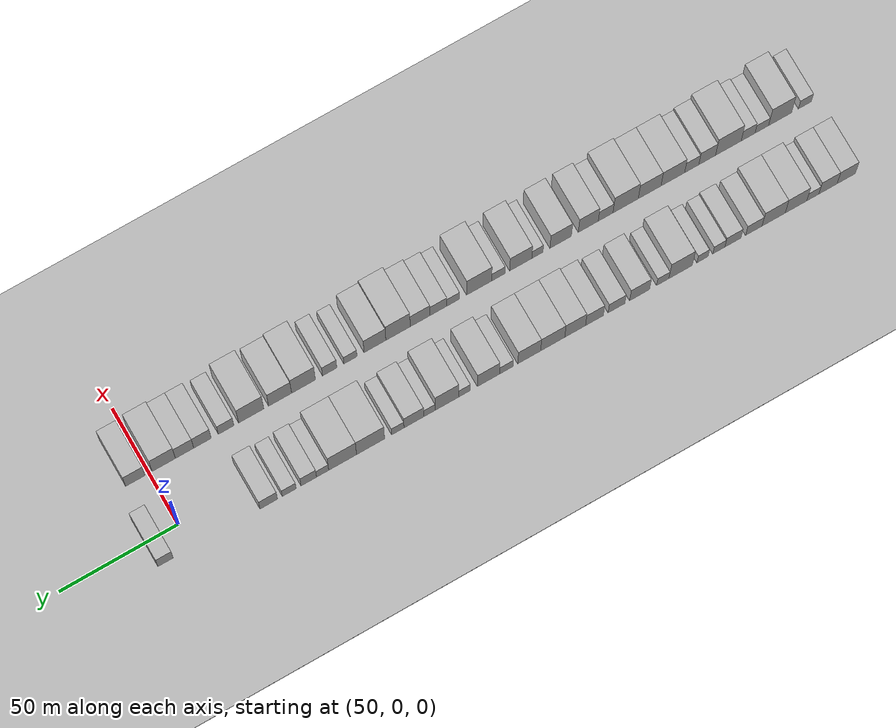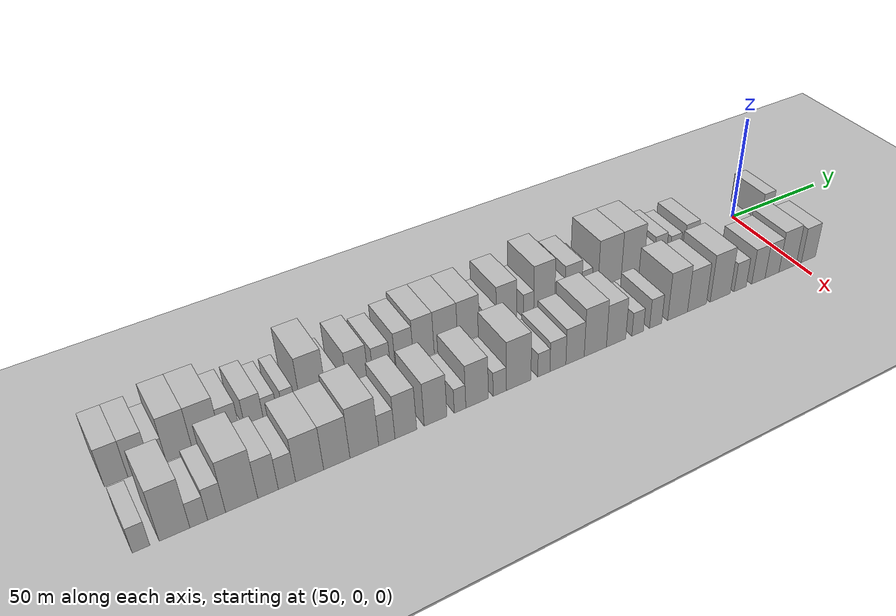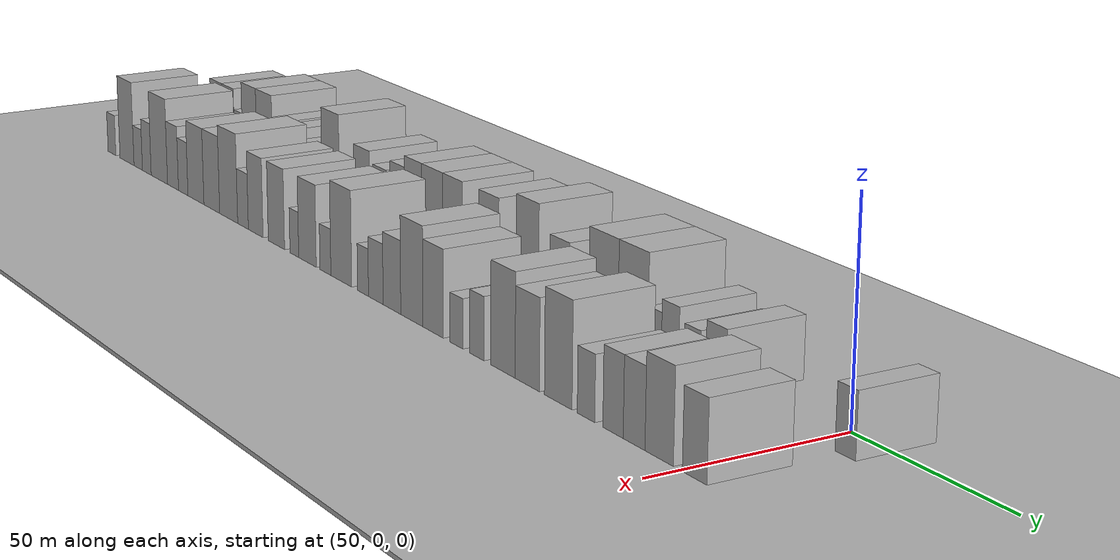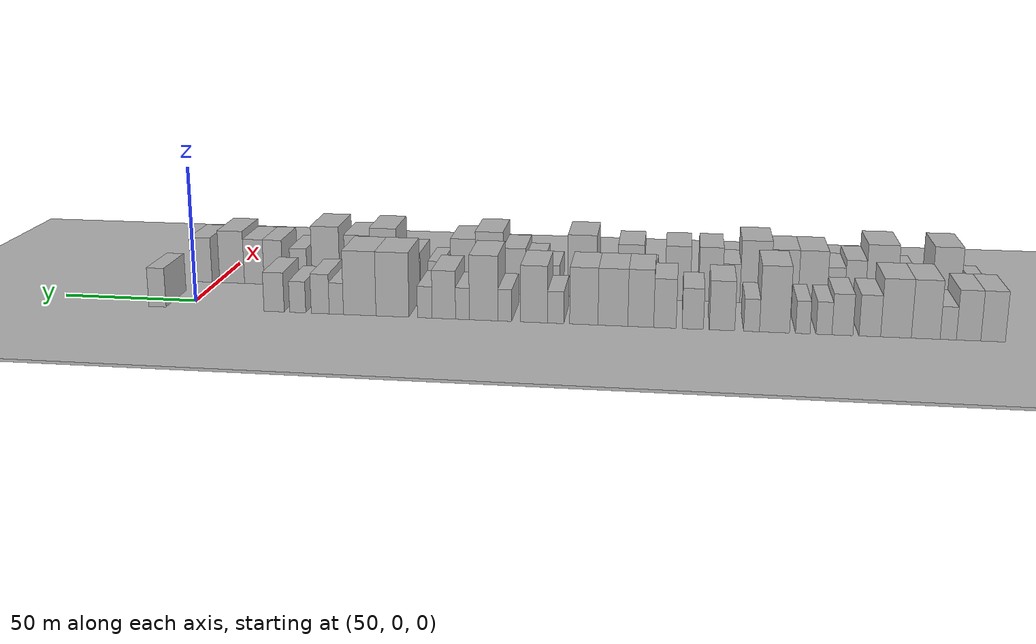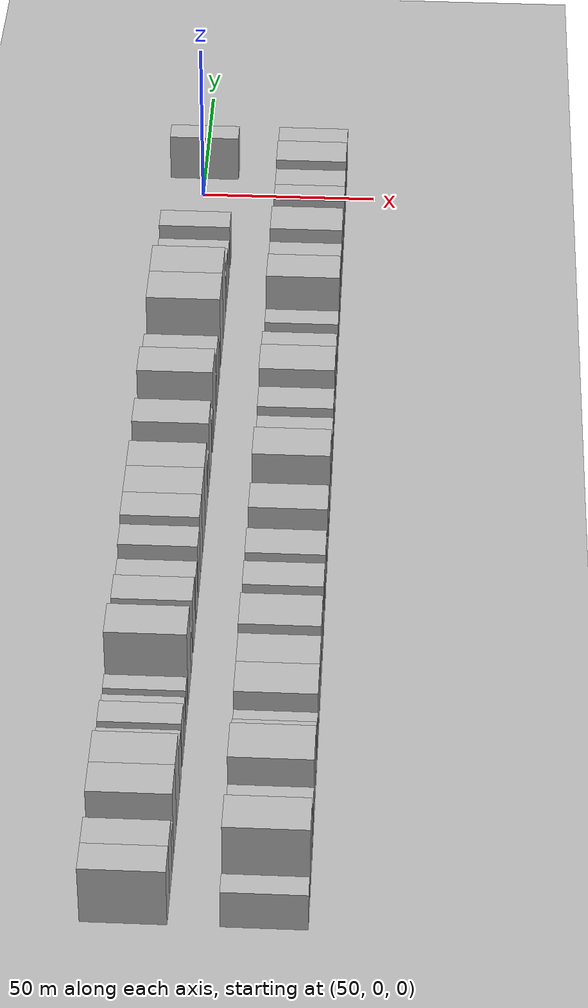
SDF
<sdf version="1.6">
 <world name="default">
  <include><name>ground_plane_1</name><uri>model://HANNAS_ground_plane</uri></include>
  <include>
   <name>ground_plane_2</name>
   <uri>model://HANNAS_ground_plane</uri>
   <pose>100 0 0  0 0 0</pose>
  </include>
  <model name="building_1">
   <static>1</static>
   <pose>50.0000 -280.0418 0 0.000000 0.000000 0.000000</pose>
   <link name="link">
    <pose>0 0 9.00 0 0 0</pose>
    <collision name="collision"><geometry><box><size>20.0000 7.9164 18.0000</size></box></geometry></collision>
    <visual name="visual">
     <cast_shadows>0</cast_shadows>
     <geometry><box><size>20.0000 7.9164 18.0000</size></box></geometry>
     <material>
      <script>
       <uri>model://HANNAS_wall/materials/scripts</uri>
       <uri>model://HANNAS_wall/materials/textures</uri>
       <name>vrc/HANNAS_wall</name>
      </script>
     </material>
    </visual>
   </link>
  </model>
  <model name="building_2">
   <static>1</static>
   <pose>50.0000 -272.1381 0 0.000000 0.000000 0.000000</pose>
   <link name="link">
    <pose>0 0 9.00 0 0 0</pose>
    <collision name="collision"><geometry><box><size>20.0000 7.8909 18.0000</size></box></geometry></collision>
    <visual name="visual">
     <cast_shadows>0</cast_shadows>
     <geometry><box><size>20.0000 7.8909 18.0000</size></box></geometry>
     <material>
      <script>
       <uri>model://HANNAS_wall/materials/scripts</uri>
       <uri>model://HANNAS_wall/materials/textures</uri>
       <name>vrc/HANNAS_wall</name>
      </script>
     </material>
    </visual>
   </link>
  </model>
  <model name="building_3">
   <static>1</static>
   <pose>50.0000 -265.5520 0 0.000000 0.000000 0.000000</pose>
   <link name="link">
    <pose>0 0 6.00 0 0 0</pose>
    <collision name="collision"><geometry><box><size>20.0000 5.2812 12.0000</size></box></geometry></collision>
    <visual name="visual">
     <cast_shadows>0</cast_shadows>
     <geometry><box><size>20.0000 5.2812 12.0000</size></box></geometry>
     <material>
      <script>
       <uri>model://HANNAS_wall/materials/scripts</uri>
       <uri>model://HANNAS_wall/materials/textures</uri>
       <name>vrc/HANNAS_wall</name>
      </script>
     </material>
    </visual>
   </link>
  </model>
  <model name="building_4">
   <static>1</static>
   <pose>50.0000 -258.2314 0 0.000000 0.000000 0.000000</pose>
   <link name="link">
    <pose>0 0 10.50 0 0 0</pose>
    <collision name="collision"><geometry><box><size>20.0000 9.3601 21.0000</size></box></geometry></collision>
    <visual name="visual">
     <cast_shadows>0</cast_shadows>
     <geometry><box><size>20.0000 9.3601 21.0000</size></box></geometry>
     <material>
      <script>
       <uri>model://HANNAS_wall/materials/scripts</uri>
       <uri>model://HANNAS_wall/materials/textures</uri>
       <name>vrc/HANNAS_wall</name>
      </script>
     </material>
    </visual>
   </link>
  </model>
  <model name="building_5">
   <static>1</static>
   <pose>50.0000 -248.5249 0 0.000000 0.000000 0.000000</pose>
   <link name="link">
    <pose>0 0 10.50 0 0 0</pose>
    <collision name="collision"><geometry><box><size>20.0000 10.0527 21.0000</size></box></geometry></collision>
    <visual name="visual">
     <cast_shadows>0</cast_shadows>
     <geometry><box><size>20.0000 10.0527 21.0000</size></box></geometry>
     <material>
      <script>
       <uri>model://HANNAS_wall/materials/scripts</uri>
       <uri>model://HANNAS_wall/materials/textures</uri>
       <name>vrc/HANNAS_wall</name>
      </script>
     </material>
    </visual>
   </link>
  </model>
  <model name="building_6">
   <static>1</static>
   <pose>50.0000 -239.9425 0 0.000000 0.000000 0.000000</pose>
   <link name="link">
    <pose>0 0 7.50 0 0 0</pose>
    <collision name="collision"><geometry><box><size>20.0000 7.1122 15.0000</size></box></geometry></collision>
    <visual name="visual">
     <cast_shadows>0</cast_shadows>
     <geometry><box><size>20.0000 7.1122 15.0000</size></box></geometry>
     <material>
      <script>
       <uri>model://HANNAS_wall/materials/scripts</uri>
       <uri>model://HANNAS_wall/materials/textures</uri>
       <name>vrc/HANNAS_wall</name>
      </script>
     </material>
    </visual>
   </link>
  </model>
  <model name="building_7">
   <static>1</static>
   <pose>50.0000 -230.9137 0 0.000000 0.000000 0.000000</pose>
   <link name="link">
    <pose>0 0 7.50 0 0 0</pose>
    <collision name="collision"><geometry><box><size>20.0000 6.9454 15.0000</size></box></geometry></collision>
    <visual name="visual">
     <cast_shadows>0</cast_shadows>
     <geometry><box><size>20.0000 6.9454 15.0000</size></box></geometry>
     <material>
      <script>
       <uri>model://HANNAS_wall/materials/scripts</uri>
       <uri>model://HANNAS_wall/materials/textures</uri>
       <name>vrc/HANNAS_wall</name>
      </script>
     </material>
    </visual>
   </link>
  </model>
  <model name="building_8">
   <static>1</static>
   <pose>50.0000 -224.8101 0 0.000000 0.000000 0.000000</pose>
   <link name="link">
    <pose>0 0 6.00 0 0 0</pose>
    <collision name="collision"><geometry><box><size>20.0000 5.2617 12.0000</size></box></geometry></collision>
    <visual name="visual">
     <cast_shadows>0</cast_shadows>
     <geometry><box><size>20.0000 5.2617 12.0000</size></box></geometry>
     <material>
      <script>
       <uri>model://HANNAS_wall/materials/scripts</uri>
       <uri>model://HANNAS_wall/materials/textures</uri>
       <name>vrc/HANNAS_wall</name>
      </script>
     </material>
    </visual>
   </link>
  </model>
  <model name="building_9">
   <static>1</static>
   <pose>50.0000 -217.7683 0 0.000000 0.000000 0.000000</pose>
   <link name="link">
    <pose>0 0 6.00 0 0 0</pose>
    <collision name="collision"><geometry><box><size>20.0000 4.8219 12.0000</size></box></geometry></collision>
    <visual name="visual">
     <cast_shadows>0</cast_shadows>
     <geometry><box><size>20.0000 4.8219 12.0000</size></box></geometry>
     <material>
      <script>
       <uri>model://HANNAS_wall/materials/scripts</uri>
       <uri>model://HANNAS_wall/materials/textures</uri>
       <name>vrc/HANNAS_wall</name>
      </script>
     </material>
    </visual>
   </link>
  </model>
  <model name="building_10">
   <static>1</static>
   <pose>50.0000 -208.3083 0 0.000000 0.000000 0.000000</pose>
   <link name="link">
    <pose>0 0 12.00 0 0 0</pose>
    <collision name="collision"><geometry><box><size>20.0000 10.0980 24.0000</size></box></geometry></collision>
    <visual name="visual">
     <cast_shadows>0</cast_shadows>
     <geometry><box><size>20.0000 10.0980 24.0000</size></box></geometry>
     <material>
      <script>
       <uri>model://HANNAS_wall/materials/scripts</uri>
       <uri>model://HANNAS_wall/materials/textures</uri>
       <name>vrc/HANNAS_wall</name>
      </script>
     </material>
    </visual>
   </link>
  </model>
  <model name="building_11">
   <static>1</static>
   <pose>50.0000 -200.6108 0 0.000000 0.000000 0.000000</pose>
   <link name="link">
    <pose>0 0 6.00 0 0 0</pose>
    <collision name="collision"><geometry><box><size>20.0000 5.2971 12.0000</size></box></geometry></collision>
    <visual name="visual">
     <cast_shadows>0</cast_shadows>
     <geometry><box><size>20.0000 5.2971 12.0000</size></box></geometry>
     <material>
      <script>
       <uri>model://HANNAS_wall/materials/scripts</uri>
       <uri>model://HANNAS_wall/materials/textures</uri>
       <name>vrc/HANNAS_wall</name>
      </script>
     </material>
    </visual>
   </link>
  </model>
  <model name="building_12">
   <static>1</static>
   <pose>50.0000 -190.6578 0 0.000000 0.000000 0.000000</pose>
   <link name="link">
    <pose>0 0 9.00 0 0 0</pose>
    <collision name="collision"><geometry><box><size>20.0000 8.6088 18.0000</size></box></geometry></collision>
    <visual name="visual">
     <cast_shadows>0</cast_shadows>
     <geometry><box><size>20.0000 8.6088 18.0000</size></box></geometry>
     <material>
      <script>
       <uri>model://HANNAS_wall/materials/scripts</uri>
       <uri>model://HANNAS_wall/materials/textures</uri>
       <name>vrc/HANNAS_wall</name>
      </script>
     </material>
    </visual>
   </link>
  </model>
  <model name="building_13">
   <static>1</static>
   <pose>50.0000 -180.7270 0 0.000000 0.000000 0.000000</pose>
   <link name="link">
    <pose>0 0 7.50 0 0 0</pose>
    <collision name="collision"><geometry><box><size>20.0000 7.2529 15.0000</size></box></geometry></collision>
    <visual name="visual">
     <cast_shadows>0</cast_shadows>
     <geometry><box><size>20.0000 7.2529 15.0000</size></box></geometry>
     <material>
      <script>
       <uri>model://HANNAS_wall/materials/scripts</uri>
       <uri>model://HANNAS_wall/materials/textures</uri>
       <name>vrc/HANNAS_wall</name>
      </script>
     </material>
    </visual>
   </link>
  </model>
  <model name="building_14">
   <static>1</static>
   <pose>50.0000 -171.2590 0 0.000000 0.000000 0.000000</pose>
   <link name="link">
    <pose>0 0 9.00 0 0 0</pose>
    <collision name="collision"><geometry><box><size>20.0000 7.6830 18.0000</size></box></geometry></collision>
    <visual name="visual">
     <cast_shadows>0</cast_shadows>
     <geometry><box><size>20.0000 7.6830 18.0000</size></box></geometry>
     <material>
      <script>
       <uri>model://HANNAS_wall/materials/scripts</uri>
       <uri>model://HANNAS_wall/materials/textures</uri>
       <name>vrc/HANNAS_wall</name>
      </script>
     </material>
    </visual>
   </link>
  </model>
  <model name="building_15">
   <static>1</static>
   <pose>50.0000 -162.9689 0 0.000000 0.000000 0.000000</pose>
   <link name="link">
    <pose>0 0 10.50 0 0 0</pose>
    <collision name="collision"><geometry><box><size>20.0000 8.8972 21.0000</size></box></geometry></collision>
    <visual name="visual">
     <cast_shadows>0</cast_shadows>
     <geometry><box><size>20.0000 8.8972 21.0000</size></box></geometry>
     <material>
      <script>
       <uri>model://HANNAS_wall/materials/scripts</uri>
       <uri>model://HANNAS_wall/materials/textures</uri>
       <name>vrc/HANNAS_wall</name>
      </script>
     </material>
    </visual>
   </link>
  </model>
  <model name="building_16">
   <static>1</static>
   <pose>50.0000 -153.3643 0 0.000000 0.000000 0.000000</pose>
   <link name="link">
    <pose>0 0 10.50 0 0 0</pose>
    <collision name="collision"><geometry><box><size>20.0000 10.3121 21.0000</size></box></geometry></collision>
    <visual name="visual">
     <cast_shadows>0</cast_shadows>
     <geometry><box><size>20.0000 10.3121 21.0000</size></box></geometry>
     <material>
      <script>
       <uri>model://HANNAS_wall/materials/scripts</uri>
       <uri>model://HANNAS_wall/materials/textures</uri>
       <name>vrc/HANNAS_wall</name>
      </script>
     </material>
    </visual>
   </link>
  </model>
  <model name="building_17">
   <static>1</static>
   <pose>50.0000 -143.2969 0 0.000000 0.000000 0.000000</pose>
   <link name="link">
    <pose>0 0 10.50 0 0 0</pose>
    <collision name="collision"><geometry><box><size>20.0000 9.8226 21.0000</size></box></geometry></collision>
    <visual name="visual">
     <cast_shadows>0</cast_shadows>
     <geometry><box><size>20.0000 9.8226 21.0000</size></box></geometry>
     <material>
      <script>
       <uri>model://HANNAS_wall/materials/scripts</uri>
       <uri>model://HANNAS_wall/materials/textures</uri>
       <name>vrc/HANNAS_wall</name>
      </script>
     </material>
    </visual>
   </link>
  </model>
  <model name="building_18">
   <static>1</static>
   <pose>50.0000 -133.5060 0 0.000000 0.000000 0.000000</pose>
   <link name="link">
    <pose>0 0 6.00 0 0 0</pose>
    <collision name="collision"><geometry><box><size>20.0000 5.7592 12.0000</size></box></geometry></collision>
    <visual name="visual">
     <cast_shadows>0</cast_shadows>
     <geometry><box><size>20.0000 5.7592 12.0000</size></box></geometry>
     <material>
      <script>
       <uri>model://HANNAS_wall/materials/scripts</uri>
       <uri>model://HANNAS_wall/materials/textures</uri>
       <name>vrc/HANNAS_wall</name>
      </script>
     </material>
    </visual>
   </link>
  </model>
  <model name="building_19">
   <static>1</static>
   <pose>50.0000 -125.8927 0 0.000000 0.000000 0.000000</pose>
   <link name="link">
    <pose>0 0 10.50 0 0 0</pose>
    <collision name="collision"><geometry><box><size>20.0000 9.4675 21.0000</size></box></geometry></collision>
    <visual name="visual">
     <cast_shadows>0</cast_shadows>
     <geometry><box><size>20.0000 9.4675 21.0000</size></box></geometry>
     <material>
      <script>
       <uri>model://HANNAS_wall/materials/scripts</uri>
       <uri>model://HANNAS_wall/materials/textures</uri>
       <name>vrc/HANNAS_wall</name>
      </script>
     </material>
    </visual>
   </link>
  </model>
  <model name="building_20">
   <static>1</static>
   <pose>50.0000 -115.6931 0 0.000000 0.000000 0.000000</pose>
   <link name="link">
    <pose>0 0 6.00 0 0 0</pose>
    <collision name="collision"><geometry><box><size>20.0000 4.9316 12.0000</size></box></geometry></collision>
    <visual name="visual">
     <cast_shadows>0</cast_shadows>
     <geometry><box><size>20.0000 4.9316 12.0000</size></box></geometry>
     <material>
      <script>
       <uri>model://HANNAS_wall/materials/scripts</uri>
       <uri>model://HANNAS_wall/materials/textures</uri>
       <name>vrc/HANNAS_wall</name>
      </script>
     </material>
    </visual>
   </link>
  </model>
  <model name="building_21">
   <static>1</static>
   <pose>50.0000 -108.1800 0 0.000000 0.000000 0.000000</pose>
   <link name="link">
    <pose>0 0 12.00 0 0 0</pose>
    <collision name="collision"><geometry><box><size>20.0000 10.0948 24.0000</size></box></geometry></collision>
    <visual name="visual">
     <cast_shadows>0</cast_shadows>
     <geometry><box><size>20.0000 10.0948 24.0000</size></box></geometry>
     <material>
      <script>
       <uri>model://HANNAS_wall/materials/scripts</uri>
       <uri>model://HANNAS_wall/materials/textures</uri>
       <name>vrc/HANNAS_wall</name>
      </script>
     </material>
    </visual>
   </link>
  </model>
  <model name="building_22">
   <static>1</static>
   <pose>50.0000 -100.7014 0 0.000000 0.000000 0.000000</pose>
   <link name="link">
    <pose>0 0 6.00 0 0 0</pose>
    <collision name="collision"><geometry><box><size>20.0000 4.8624 12.0000</size></box></geometry></collision>
    <visual name="visual">
     <cast_shadows>0</cast_shadows>
     <geometry><box><size>20.0000 4.8624 12.0000</size></box></geometry>
     <material>
      <script>
       <uri>model://HANNAS_wall/materials/scripts</uri>
       <uri>model://HANNAS_wall/materials/textures</uri>
       <name>vrc/HANNAS_wall</name>
      </script>
     </material>
    </visual>
   </link>
  </model>
  <model name="building_23">
   <static>1</static>
   <pose>50.0000 -94.0933 0 0.000000 0.000000 0.000000</pose>
   <link name="link">
    <pose>0 0 9.00 0 0 0</pose>
    <collision name="collision"><geometry><box><size>20.0000 8.3538 18.0000</size></box></geometry></collision>
    <visual name="visual">
     <cast_shadows>0</cast_shadows>
     <geometry><box><size>20.0000 8.3538 18.0000</size></box></geometry>
     <material>
      <script>
       <uri>model://HANNAS_wall/materials/scripts</uri>
       <uri>model://HANNAS_wall/materials/textures</uri>
       <name>vrc/HANNAS_wall</name>
      </script>
     </material>
    </visual>
   </link>
  </model>
  <model name="building_24">
   <static>1</static>
   <pose>50.0000 -87.2946 0 0.000000 0.000000 0.000000</pose>
   <link name="link">
    <pose>0 0 6.00 0 0 0</pose>
    <collision name="collision"><geometry><box><size>20.0000 5.2435 12.0000</size></box></geometry></collision>
    <visual name="visual">
     <cast_shadows>0</cast_shadows>
     <geometry><box><size>20.0000 5.2435 12.0000</size></box></geometry>
     <material>
      <script>
       <uri>model://HANNAS_wall/materials/scripts</uri>
       <uri>model://HANNAS_wall/materials/textures</uri>
       <name>vrc/HANNAS_wall</name>
      </script>
     </material>
    </visual>
   </link>
  </model>
  <model name="building_25">
   <static>1</static>
   <pose>50.0000 -75.7288 0 0.000000 0.000000 0.000000</pose>
   <link name="link">
    <pose>0 0 12.00 0 0 0</pose>
    <collision name="collision"><geometry><box><size>20.0000 11.8882 24.0000</size></box></geometry></collision>
    <visual name="visual">
     <cast_shadows>0</cast_shadows>
     <geometry><box><size>20.0000 11.8882 24.0000</size></box></geometry>
     <material>
      <script>
       <uri>model://HANNAS_wall/materials/scripts</uri>
       <uri>model://HANNAS_wall/materials/textures</uri>
       <name>vrc/HANNAS_wall</name>
      </script>
     </material>
    </visual>
   </link>
  </model>
  <model name="building_26">
   <static>1</static>
   <pose>50.0000 -63.8923 0 0.000000 0.000000 0.000000</pose>
   <link name="link">
    <pose>0 0 12.00 0 0 0</pose>
    <collision name="collision"><geometry><box><size>20.0000 11.7849 24.0000</size></box></geometry></collision>
    <visual name="visual">
     <cast_shadows>0</cast_shadows>
     <geometry><box><size>20.0000 11.7849 24.0000</size></box></geometry>
     <material>
      <script>
       <uri>model://HANNAS_wall/materials/scripts</uri>
       <uri>model://HANNAS_wall/materials/textures</uri>
       <name>vrc/HANNAS_wall</name>
      </script>
     </material>
    </visual>
   </link>
  </model>
  <model name="building_27">
   <static>1</static>
   <pose>50.0000 -55.4154 0 0.000000 0.000000 0.000000</pose>
   <link name="link">
    <pose>0 0 6.00 0 0 0</pose>
    <collision name="collision"><geometry><box><size>20.0000 5.1688 12.0000</size></box></geometry></collision>
    <visual name="visual">
     <cast_shadows>0</cast_shadows>
     <geometry><box><size>20.0000 5.1688 12.0000</size></box></geometry>
     <material>
      <script>
       <uri>model://HANNAS_wall/materials/scripts</uri>
       <uri>model://HANNAS_wall/materials/textures</uri>
       <name>vrc/HANNAS_wall</name>
      </script>
     </material>
    </visual>
   </link>
  </model>
  <model name="building_28">
   <static>1</static>
   <pose>50.0000 -49.5430 0 0.000000 0.000000 0.000000</pose>
   <link name="link">
    <pose>0 0 7.50 0 0 0</pose>
    <collision name="collision"><geometry><box><size>20.0000 6.5759 15.0000</size></box></geometry></collision>
    <visual name="visual">
     <cast_shadows>0</cast_shadows>
     <geometry><box><size>20.0000 6.5759 15.0000</size></box></geometry>
     <material>
      <script>
       <uri>model://HANNAS_wall/materials/scripts</uri>
       <uri>model://HANNAS_wall/materials/textures</uri>
       <name>vrc/HANNAS_wall</name>
      </script>
     </material>
    </visual>
   </link>
  </model>
  <model name="building_29">
   <static>1</static>
   <pose>50.0000 -41.3061 0 0.000000 0.000000 0.000000</pose>
   <link name="link">
    <pose>0 0 6.00 0 0 0</pose>
    <collision name="collision"><geometry><box><size>20.0000 5.8980 12.0000</size></box></geometry></collision>
    <visual name="visual">
     <cast_shadows>0</cast_shadows>
     <geometry><box><size>20.0000 5.8980 12.0000</size></box></geometry>
     <material>
      <script>
       <uri>model://HANNAS_wall/materials/scripts</uri>
       <uri>model://HANNAS_wall/materials/textures</uri>
       <name>vrc/HANNAS_wall</name>
      </script>
     </material>
    </visual>
   </link>
  </model>
  <model name="building_30">
   <static>1</static>
   <pose>50.0000 -32.6399 0 0.000000 0.000000 0.000000</pose>
   <link name="link">
    <pose>0 0 7.50 0 0 0</pose>
    <collision name="collision"><geometry><box><size>20.0000 7.4343 15.0000</size></box></geometry></collision>
    <visual name="visual">
     <cast_shadows>0</cast_shadows>
     <geometry><box><size>20.0000 7.4343 15.0000</size></box></geometry>
     <material>
      <script>
       <uri>model://HANNAS_wall/materials/scripts</uri>
       <uri>model://HANNAS_wall/materials/textures</uri>
       <name>vrc/HANNAS_wall</name>
      </script>
     </material>
    </visual>
   </link>
  </model>
  <model name="building_31">
   <static>1</static>
   <pose>50.0000 10.7931 0 0.000000 0.000000 0.000000</pose>
   <link name="link">
    <pose>0 0 7.50 0 0 0</pose>
    <collision name="collision"><geometry><box><size>20.0000 6.4772 15.0000</size></box></geometry></collision>
    <visual name="visual">
     <cast_shadows>0</cast_shadows>
     <geometry><box><size>20.0000 6.4772 15.0000</size></box></geometry>
     <material>
      <script>
       <uri>model://HANNAS_wall/materials/scripts</uri>
       <uri>model://HANNAS_wall/materials/textures</uri>
       <name>vrc/HANNAS_wall</name>
      </script>
     </material>
    </visual>
   </link>
  </model>
  <model name="building_62">
   <static>1</static>
   <pose>82.0000 -281.1718 0 0.000000 0.000000 0.000000</pose>
   <link name="link">
    <pose>0 0 6.00 0 0 0</pose>
    <collision name="collision"><geometry><box><size>20.0000 5.6565 12.0000</size></box></geometry></collision>
    <visual name="visual">
     <cast_shadows>0</cast_shadows>
     <geometry><box><size>20.0000 5.6565 12.0000</size></box></geometry>
     <material>
      <script>
       <uri>model://HANNAS_wall/materials/scripts</uri>
       <uri>model://HANNAS_wall/materials/textures</uri>
       <name>vrc/HANNAS_wall</name>
      </script>
     </material>
    </visual>
   </link>
  </model>
  <model name="building_63">
   <static>1</static>
   <pose>82.0000 -270.3287 0 0.000000 0.000000 0.000000</pose>
   <link name="link">
    <pose>0 0 12.00 0 0 0</pose>
    <collision name="collision"><geometry><box><size>20.0000 10.0295 24.0000</size></box></geometry></collision>
    <visual name="visual">
     <cast_shadows>0</cast_shadows>
     <geometry><box><size>20.0000 10.0295 24.0000</size></box></geometry>
     <material>
      <script>
       <uri>model://HANNAS_wall/materials/scripts</uri>
       <uri>model://HANNAS_wall/materials/textures</uri>
       <name>vrc/HANNAS_wall</name>
      </script>
     </material>
    </visual>
   </link>
  </model>
  <model name="building_64">
   <static>1</static>
   <pose>82.0000 -262.3726 0 0.000000 0.000000 0.000000</pose>
   <link name="link">
    <pose>0 0 6.00 0 0 0</pose>
    <collision name="collision"><geometry><box><size>20.0000 5.8828 12.0000</size></box></geometry></collision>
    <visual name="visual">
     <cast_shadows>0</cast_shadows>
     <geometry><box><size>20.0000 5.8828 12.0000</size></box></geometry>
     <material>
      <script>
       <uri>model://HANNAS_wall/materials/scripts</uri>
       <uri>model://HANNAS_wall/materials/textures</uri>
       <name>vrc/HANNAS_wall</name>
      </script>
     </material>
    </visual>
   </link>
  </model>
  <model name="building_65">
   <static>1</static>
   <pose>82.0000 -256.4045 0 0.000000 0.000000 0.000000</pose>
   <link name="link">
    <pose>0 0 7.50 0 0 0</pose>
    <collision name="collision"><geometry><box><size>20.0000 6.0533 15.0000</size></box></geometry></collision>
    <visual name="visual">
     <cast_shadows>0</cast_shadows>
     <geometry><box><size>20.0000 6.0533 15.0000</size></box></geometry>
     <material>
      <script>
       <uri>model://HANNAS_wall/materials/scripts</uri>
       <uri>model://HANNAS_wall/materials/textures</uri>
       <name>vrc/HANNAS_wall</name>
      </script>
     </material>
    </visual>
   </link>
  </model>
  <model name="building_66">
   <static>1</static>
   <pose>82.0000 -247.8282 0 0.000000 0.000000 0.000000</pose>
   <link name="link">
    <pose>0 0 12.00 0 0 0</pose>
    <collision name="collision"><geometry><box><size>20.0000 11.0994 24.0000</size></box></geometry></collision>
    <visual name="visual">
     <cast_shadows>0</cast_shadows>
     <geometry><box><size>20.0000 11.0994 24.0000</size></box></geometry>
     <material>
      <script>
       <uri>model://HANNAS_wall/materials/scripts</uri>
       <uri>model://HANNAS_wall/materials/textures</uri>
       <name>vrc/HANNAS_wall</name>
      </script>
     </material>
    </visual>
   </link>
  </model>
  <model name="building_67">
   <static>1</static>
   <pose>82.0000 -238.6579 0 0.000000 0.000000 0.000000</pose>
   <link name="link">
    <pose>0 0 9.00 0 0 0</pose>
    <collision name="collision"><geometry><box><size>20.0000 7.2413 18.0000</size></box></geometry></collision>
    <visual name="visual">
     <cast_shadows>0</cast_shadows>
     <geometry><box><size>20.0000 7.2413 18.0000</size></box></geometry>
     <material>
      <script>
       <uri>model://HANNAS_wall/materials/scripts</uri>
       <uri>model://HANNAS_wall/materials/textures</uri>
       <name>vrc/HANNAS_wall</name>
      </script>
     </material>
    </visual>
   </link>
  </model>
  <model name="building_68">
   <static>1</static>
   <pose>82.0000 -231.9588 0 0.000000 0.000000 0.000000</pose>
   <link name="link">
    <pose>0 0 7.50 0 0 0</pose>
    <collision name="collision"><geometry><box><size>20.0000 6.1569 15.0000</size></box></geometry></collision>
    <visual name="visual">
     <cast_shadows>0</cast_shadows>
     <geometry><box><size>20.0000 6.1569 15.0000</size></box></geometry>
     <material>
      <script>
       <uri>model://HANNAS_wall/materials/scripts</uri>
       <uri>model://HANNAS_wall/materials/textures</uri>
       <name>vrc/HANNAS_wall</name>
      </script>
     </material>
    </visual>
   </link>
  </model>
  <model name="building_69">
   <static>1</static>
   <pose>82.0000 -223.7689 0 0.000000 0.000000 0.000000</pose>
   <link name="link">
    <pose>0 0 10.50 0 0 0</pose>
    <collision name="collision"><geometry><box><size>20.0000 10.2230 21.0000</size></box></geometry></collision>
    <visual name="visual">
     <cast_shadows>0</cast_shadows>
     <geometry><box><size>20.0000 10.2230 21.0000</size></box></geometry>
     <material>
      <script>
       <uri>model://HANNAS_wall/materials/scripts</uri>
       <uri>model://HANNAS_wall/materials/textures</uri>
       <name>vrc/HANNAS_wall</name>
      </script>
     </material>
    </visual>
   </link>
  </model>
  <model name="building_70">
   <static>1</static>
   <pose>82.0000 -213.7481 0 0.000000 0.000000 0.000000</pose>
   <link name="link">
    <pose>0 0 10.50 0 0 0</pose>
    <collision name="collision"><geometry><box><size>20.0000 9.8186 21.0000</size></box></geometry></collision>
    <visual name="visual">
     <cast_shadows>0</cast_shadows>
     <geometry><box><size>20.0000 9.8186 21.0000</size></box></geometry>
     <material>
      <script>
       <uri>model://HANNAS_wall/materials/scripts</uri>
       <uri>model://HANNAS_wall/materials/textures</uri>
       <name>vrc/HANNAS_wall</name>
      </script>
     </material>
    </visual>
   </link>
  </model>
  <model name="building_71">
   <static>1</static>
   <pose>82.0000 -203.3557 0 0.000000 0.000000 0.000000</pose>
   <link name="link">
    <pose>0 0 12.00 0 0 0</pose>
    <collision name="collision"><geometry><box><size>20.0000 10.9661 24.0000</size></box></geometry></collision>
    <visual name="visual">
     <cast_shadows>0</cast_shadows>
     <geometry><box><size>20.0000 10.9661 24.0000</size></box></geometry>
     <material>
      <script>
       <uri>model://HANNAS_wall/materials/scripts</uri>
       <uri>model://HANNAS_wall/materials/textures</uri>
       <name>vrc/HANNAS_wall</name>
      </script>
     </material>
    </visual>
   </link>
  </model>
  <model name="building_72">
   <static>1</static>
   <pose>82.0000 -194.7106 0 0.000000 0.000000 0.000000</pose>
   <link name="link">
    <pose>0 0 7.50 0 0 0</pose>
    <collision name="collision"><geometry><box><size>20.0000 6.3240 15.0000</size></box></geometry></collision>
    <visual name="visual">
     <cast_shadows>0</cast_shadows>
     <geometry><box><size>20.0000 6.3240 15.0000</size></box></geometry>
     <material>
      <script>
       <uri>model://HANNAS_wall/materials/scripts</uri>
       <uri>model://HANNAS_wall/materials/textures</uri>
       <name>vrc/HANNAS_wall</name>
      </script>
     </material>
    </visual>
   </link>
  </model>
  <model name="building_73">
   <static>1</static>
   <pose>82.0000 -187.2484 0 0.000000 0.000000 0.000000</pose>
   <link name="link">
    <pose>0 0 10.50 0 0 0</pose>
    <collision name="collision"><geometry><box><size>20.0000 8.6004 21.0000</size></box></geometry></collision>
    <visual name="visual">
     <cast_shadows>0</cast_shadows>
     <geometry><box><size>20.0000 8.6004 21.0000</size></box></geometry>
     <material>
      <script>
       <uri>model://HANNAS_wall/materials/scripts</uri>
       <uri>model://HANNAS_wall/materials/textures</uri>
       <name>vrc/HANNAS_wall</name>
      </script>
     </material>
    </visual>
   </link>
  </model>
  <model name="building_74">
   <static>1</static>
   <pose>82.0000 -175.3367 0 0.000000 0.000000 0.000000</pose>
   <link name="link">
    <pose>0 0 10.50 0 0 0</pose>
    <collision name="collision"><geometry><box><size>20.0000 9.2229 21.0000</size></box></geometry></collision>
    <visual name="visual">
     <cast_shadows>0</cast_shadows>
     <geometry><box><size>20.0000 9.2229 21.0000</size></box></geometry>
     <material>
      <script>
       <uri>model://HANNAS_wall/materials/scripts</uri>
       <uri>model://HANNAS_wall/materials/textures</uri>
       <name>vrc/HANNAS_wall</name>
      </script>
     </material>
    </visual>
   </link>
  </model>
  <model name="building_75">
   <static>1</static>
   <pose>82.0000 -165.3211 0 0.000000 0.000000 0.000000</pose>
   <link name="link">
    <pose>0 0 6.00 0 0 0</pose>
    <collision name="collision"><geometry><box><size>20.0000 4.8083 12.0000</size></box></geometry></collision>
    <visual name="visual">
     <cast_shadows>0</cast_shadows>
     <geometry><box><size>20.0000 4.8083 12.0000</size></box></geometry>
     <material>
      <script>
       <uri>model://HANNAS_wall/materials/scripts</uri>
       <uri>model://HANNAS_wall/materials/textures</uri>
       <name>vrc/HANNAS_wall</name>
      </script>
     </material>
    </visual>
   </link>
  </model>
  <model name="building_76">
   <static>1</static>
   <pose>82.0000 -158.1637 0 0.000000 0.000000 0.000000</pose>
   <link name="link">
    <pose>0 0 10.50 0 0 0</pose>
    <collision name="collision"><geometry><box><size>20.0000 9.5065 21.0000</size></box></geometry></collision>
    <visual name="visual">
     <cast_shadows>0</cast_shadows>
     <geometry><box><size>20.0000 9.5065 21.0000</size></box></geometry>
     <material>
      <script>
       <uri>model://HANNAS_wall/materials/scripts</uri>
       <uri>model://HANNAS_wall/materials/textures</uri>
       <name>vrc/HANNAS_wall</name>
      </script>
     </material>
    </visual>
   </link>
  </model>
  <model name="building_77">
   <static>1</static>
   <pose>82.0000 -148.5441 0 0.000000 0.000000 0.000000</pose>
   <link name="link">
    <pose>0 0 6.00 0 0 0</pose>
    <collision name="collision"><geometry><box><size>20.0000 5.7327 12.0000</size></box></geometry></collision>
    <visual name="visual">
     <cast_shadows>0</cast_shadows>
     <geometry><box><size>20.0000 5.7327 12.0000</size></box></geometry>
     <material>
      <script>
       <uri>model://HANNAS_wall/materials/scripts</uri>
       <uri>model://HANNAS_wall/materials/textures</uri>
       <name>vrc/HANNAS_wall</name>
      </script>
     </material>
    </visual>
   </link>
  </model>
  <model name="building_78">
   <static>1</static>
   <pose>82.0000 -140.3143 0 0.000000 0.000000 0.000000</pose>
   <link name="link">
    <pose>0 0 12.00 0 0 0</pose>
    <collision name="collision"><geometry><box><size>20.0000 10.7269 24.0000</size></box></geometry></collision>
    <visual name="visual">
     <cast_shadows>0</cast_shadows>
     <geometry><box><size>20.0000 10.7269 24.0000</size></box></geometry>
     <material>
      <script>
       <uri>model://HANNAS_wall/materials/scripts</uri>
       <uri>model://HANNAS_wall/materials/textures</uri>
       <name>vrc/HANNAS_wall</name>
      </script>
     </material>
    </visual>
   </link>
  </model>
  <model name="building_79">
   <static>1</static>
   <pose>82.0000 -129.2408 0 0.000000 0.000000 0.000000</pose>
   <link name="link">
    <pose>0 0 6.00 0 0 0</pose>
    <collision name="collision"><geometry><box><size>20.0000 5.4200 12.0000</size></box></geometry></collision>
    <visual name="visual">
     <cast_shadows>0</cast_shadows>
     <geometry><box><size>20.0000 5.4200 12.0000</size></box></geometry>
     <material>
      <script>
       <uri>model://HANNAS_wall/materials/scripts</uri>
       <uri>model://HANNAS_wall/materials/textures</uri>
       <name>vrc/HANNAS_wall</name>
      </script>
     </material>
    </visual>
   </link>
  </model>
  <model name="building_80">
   <static>1</static>
   <pose>82.0000 -122.9179 0 0.000000 0.000000 0.000000</pose>
   <link name="link">
    <pose>0 0 7.50 0 0 0</pose>
    <collision name="collision"><geometry><box><size>20.0000 7.2259 15.0000</size></box></geometry></collision>
    <visual name="visual">
     <cast_shadows>0</cast_shadows>
     <geometry><box><size>20.0000 7.2259 15.0000</size></box></geometry>
     <material>
      <script>
       <uri>model://HANNAS_wall/materials/scripts</uri>
       <uri>model://HANNAS_wall/materials/textures</uri>
       <name>vrc/HANNAS_wall</name>
      </script>
     </material>
    </visual>
   </link>
  </model>
  <model name="building_81">
   <static>1</static>
   <pose>82.0000 -115.0719 0 0.000000 0.000000 0.000000</pose>
   <link name="link">
    <pose>0 0 9.00 0 0 0</pose>
    <collision name="collision"><geometry><box><size>20.0000 8.4660 18.0000</size></box></geometry></collision>
    <visual name="visual">
     <cast_shadows>0</cast_shadows>
     <geometry><box><size>20.0000 8.4660 18.0000</size></box></geometry>
     <material>
      <script>
       <uri>model://HANNAS_wall/materials/scripts</uri>
       <uri>model://HANNAS_wall/materials/textures</uri>
       <name>vrc/HANNAS_wall</name>
      </script>
     </material>
    </visual>
   </link>
  </model>
  <model name="building_82">
   <static>1</static>
   <pose>82.0000 -105.6387 0 0.000000 0.000000 0.000000</pose>
   <link name="link">
    <pose>0 0 12.00 0 0 0</pose>
    <collision name="collision"><geometry><box><size>20.0000 10.4004 24.0000</size></box></geometry></collision>
    <visual name="visual">
     <cast_shadows>0</cast_shadows>
     <geometry><box><size>20.0000 10.4004 24.0000</size></box></geometry>
     <material>
      <script>
       <uri>model://HANNAS_wall/materials/scripts</uri>
       <uri>model://HANNAS_wall/materials/textures</uri>
       <name>vrc/HANNAS_wall</name>
      </script>
     </material>
    </visual>
   </link>
  </model>
  <model name="building_83">
   <static>1</static>
   <pose>82.0000 -95.8038 0 0.000000 0.000000 0.000000</pose>
   <link name="link">
    <pose>0 0 10.50 0 0 0</pose>
    <collision name="collision"><geometry><box><size>20.0000 9.2695 21.0000</size></box></geometry></collision>
    <visual name="visual">
     <cast_shadows>0</cast_shadows>
     <geometry><box><size>20.0000 9.2695 21.0000</size></box></geometry>
     <material>
      <script>
       <uri>model://HANNAS_wall/materials/scripts</uri>
       <uri>model://HANNAS_wall/materials/textures</uri>
       <name>vrc/HANNAS_wall</name>
      </script>
     </material>
    </visual>
   </link>
  </model>
  <model name="building_84">
   <static>1</static>
   <pose>82.0000 -85.3598 0 0.000000 0.000000 0.000000</pose>
   <link name="link">
    <pose>0 0 6.00 0 0 0</pose>
    <collision name="collision"><geometry><box><size>20.0000 5.6184 12.0000</size></box></geometry></collision>
    <visual name="visual">
     <cast_shadows>0</cast_shadows>
     <geometry><box><size>20.0000 5.6184 12.0000</size></box></geometry>
     <material>
      <script>
       <uri>model://HANNAS_wall/materials/scripts</uri>
       <uri>model://HANNAS_wall/materials/textures</uri>
       <name>vrc/HANNAS_wall</name>
      </script>
     </material>
    </visual>
   </link>
  </model>
  <model name="building_85">
   <static>1</static>
   <pose>82.0000 -76.5153 0 0.000000 0.000000 0.000000</pose>
   <link name="link">
    <pose>0 0 7.50 0 0 0</pose>
    <collision name="collision"><geometry><box><size>20.0000 6.0707 15.0000</size></box></geometry></collision>
    <visual name="visual">
     <cast_shadows>0</cast_shadows>
     <geometry><box><size>20.0000 6.0707 15.0000</size></box></geometry>
     <material>
      <script>
       <uri>model://HANNAS_wall/materials/scripts</uri>
       <uri>model://HANNAS_wall/materials/textures</uri>
       <name>vrc/HANNAS_wall</name>
      </script>
     </material>
    </visual>
   </link>
  </model>
  <model name="building_86">
   <static>1</static>
   <pose>82.0000 -65.4254 0 0.000000 0.000000 0.000000</pose>
   <link name="link">
    <pose>0 0 12.00 0 0 0</pose>
    <collision name="collision"><geometry><box><size>20.0000 10.1092 24.0000</size></box></geometry></collision>
    <visual name="visual">
     <cast_shadows>0</cast_shadows>
     <geometry><box><size>20.0000 10.1092 24.0000</size></box></geometry>
     <material>
      <script>
       <uri>model://HANNAS_wall/materials/scripts</uri>
       <uri>model://HANNAS_wall/materials/textures</uri>
       <name>vrc/HANNAS_wall</name>
      </script>
     </material>
    </visual>
   </link>
  </model>
  <model name="building_87">
   <static>1</static>
   <pose>82.0000 -55.4789 0 0.000000 0.000000 0.000000</pose>
   <link name="link">
    <pose>0 0 10.50 0 0 0</pose>
    <collision name="collision"><geometry><box><size>20.0000 9.7836 21.0000</size></box></geometry></collision>
    <visual name="visual">
     <cast_shadows>0</cast_shadows>
     <geometry><box><size>20.0000 9.7836 21.0000</size></box></geometry>
     <material>
      <script>
       <uri>model://HANNAS_wall/materials/scripts</uri>
       <uri>model://HANNAS_wall/materials/textures</uri>
       <name>vrc/HANNAS_wall</name>
      </script>
     </material>
    </visual>
   </link>
  </model>
  <model name="building_88">
   <static>1</static>
   <pose>82.0000 -43.2314 0 0.000000 0.000000 0.000000</pose>
   <link name="link">
    <pose>0 0 12.00 0 0 0</pose>
    <collision name="collision"><geometry><box><size>20.0000 10.7114 24.0000</size></box></geometry></collision>
    <visual name="visual">
     <cast_shadows>0</cast_shadows>
     <geometry><box><size>20.0000 10.7114 24.0000</size></box></geometry>
     <material>
      <script>
       <uri>model://HANNAS_wall/materials/scripts</uri>
       <uri>model://HANNAS_wall/materials/textures</uri>
       <name>vrc/HANNAS_wall</name>
      </script>
     </material>
    </visual>
   </link>
  </model>
  <model name="building_89">
   <static>1</static>
   <pose>82.0000 -32.5953 0 0.000000 0.000000 0.000000</pose>
   <link name="link">
    <pose>0 0 7.50 0 0 0</pose>
    <collision name="collision"><geometry><box><size>20.0000 6.5607 15.0000</size></box></geometry></collision>
    <visual name="visual">
     <cast_shadows>0</cast_shadows>
     <geometry><box><size>20.0000 6.5607 15.0000</size></box></geometry>
     <material>
      <script>
       <uri>model://HANNAS_wall/materials/scripts</uri>
       <uri>model://HANNAS_wall/materials/textures</uri>
       <name>vrc/HANNAS_wall</name>
      </script>
     </material>
    </visual>
   </link>
  </model>
  <model name="building_90">
   <static>1</static>
   <pose>82.0000 -22.6206 0 0.000000 0.000000 0.000000</pose>
   <link name="link">
    <pose>0 0 9.00 0 0 0</pose>
    <collision name="collision"><geometry><box><size>20.0000 7.3888 18.0000</size></box></geometry></collision>
    <visual name="visual">
     <cast_shadows>0</cast_shadows>
     <geometry><box><size>20.0000 7.3888 18.0000</size></box></geometry>
     <material>
      <script>
       <uri>model://HANNAS_wall/materials/scripts</uri>
       <uri>model://HANNAS_wall/materials/textures</uri>
       <name>vrc/HANNAS_wall</name>
      </script>
     </material>
    </visual>
   </link>
  </model>
  <model name="building_91">
   <static>1</static>
   <pose>82.0000 -15.0597 0 0.000000 0.000000 0.000000</pose>
   <link name="link">
    <pose>0 0 9.00 0 0 0</pose>
    <collision name="collision"><geometry><box><size>20.0000 7.7330 18.0000</size></box></geometry></collision>
    <visual name="visual">
     <cast_shadows>0</cast_shadows>
     <geometry><box><size>20.0000 7.7330 18.0000</size></box></geometry>
     <material>
      <script>
       <uri>model://HANNAS_wall/materials/scripts</uri>
       <uri>model://HANNAS_wall/materials/textures</uri>
       <name>vrc/HANNAS_wall</name>
      </script>
     </material>
    </visual>
   </link>
  </model>
  <model name="building_92">
   <static>1</static>
   <pose>82.0000 -6.2844 0 0.000000 0.000000 0.000000</pose>
   <link name="link">
    <pose>0 0 10.50 0 0 0</pose>
    <collision name="collision"><geometry><box><size>20.0000 9.8177 21.0000</size></box></geometry></collision>
    <visual name="visual">
     <cast_shadows>0</cast_shadows>
     <geometry><box><size>20.0000 9.8177 21.0000</size></box></geometry>
     <material>
      <script>
       <uri>model://HANNAS_wall/materials/scripts</uri>
       <uri>model://HANNAS_wall/materials/textures</uri>
       <name>vrc/HANNAS_wall</name>
      </script>
     </material>
    </visual>
   </link>
  </model>
  <model name="building_93">
   <static>1</static>
   <pose>82.0000 5.7173 0 0.000000 0.000000 0.000000</pose>
   <link name="link">
    <pose>0 0 9.00 0 0 0</pose>
    <collision name="collision"><geometry><box><size>20.0000 8.1857 18.0000</size></box></geometry></collision>
    <visual name="visual">
     <cast_shadows>0</cast_shadows>
     <geometry><box><size>20.0000 8.1857 18.0000</size></box></geometry>
     <material>
      <script>
       <uri>model://HANNAS_wall/materials/scripts</uri>
       <uri>model://HANNAS_wall/materials/textures</uri>
       <name>vrc/HANNAS_wall</name>
      </script>
     </material>
    </visual>
   </link>
  </model>
 </world>
</sdf>
